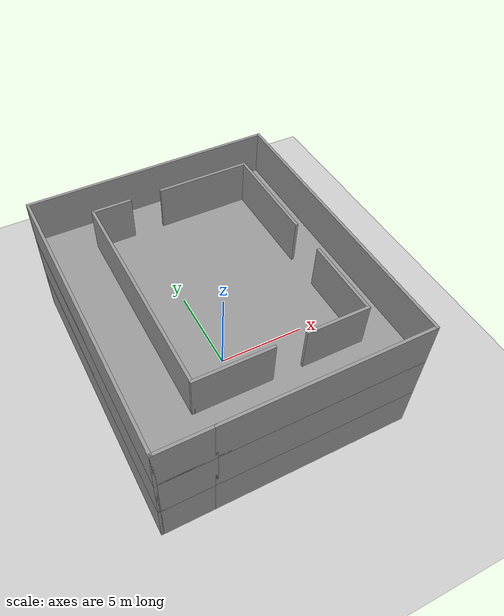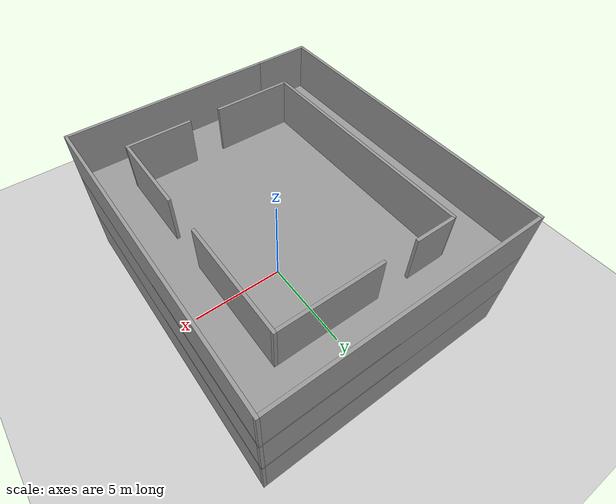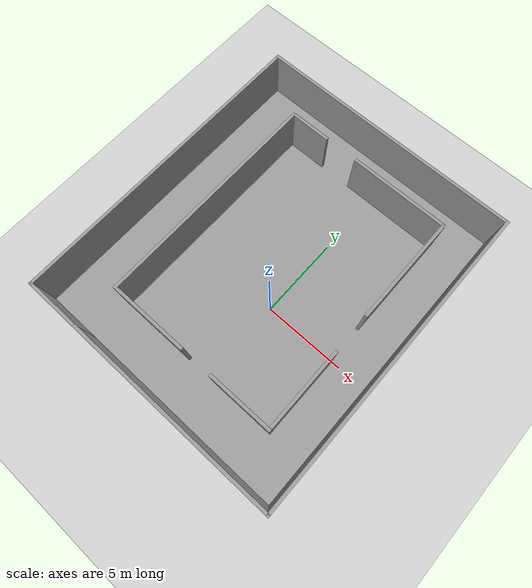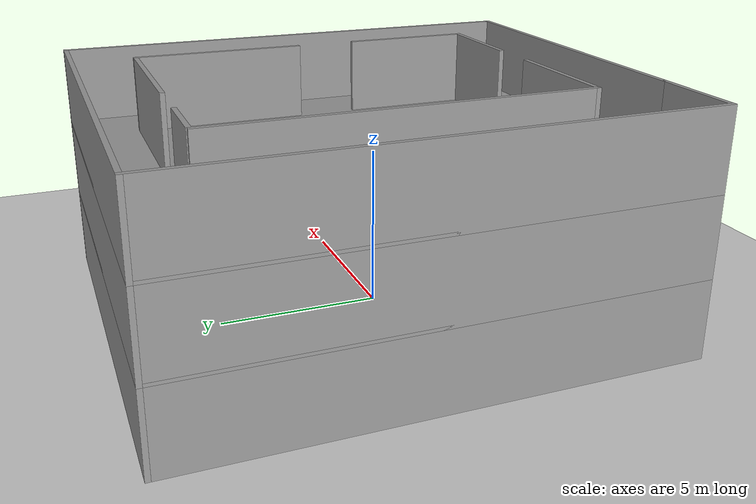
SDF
<sdf version="1.5">
 <world name="default">
  <model name="ground_plane">
   <static>1</static>
   <link name="link">
    <collision name="collision">
     <geometry><plane><normal>0 0 1</normal><size>100 100</size></plane></geometry>
     <surface><friction><ode><mu>100</mu><mu2>50</mu2></ode></friction></surface>
    </collision>
    <visual name="visual">
     <cast_shadows>0</cast_shadows>
     <geometry><plane><normal>0 0 1</normal><size>100 100</size></plane></geometry>
     <material>
      <script><uri>file://media/materials/scripts/gazebo.material</uri><name>Gazebo/Grey</name></script>
     </material>
    </visual>
   </link>
  </model>
  <light name="sun" type="directional">
   <pose>0 0 10 0 -0 0</pose>
   <diffuse>0.8 0.8 0.8 1</diffuse>
   <specular>0.2 0.2 0.2 1</specular>
   <attenuation>
    <range>1000</range>
    <constant>0.9</constant>
    <linear>0.01</linear>
    <quadratic>0.001</quadratic>
   </attenuation>
   <direction>-0.5 0.1 -0.9</direction>
  </light>
  <light name="my_light0" type="directional">
   <pose>0 0 30 0 -0 0</pose>
   <diffuse>0.5 0.5 0.5 1</diffuse>
   <specular>0.1 0.1 0.1 1</specular>
   <direction>0.1 0.1 -0.9</direction>
   <attenuation>
    <range>20</range>
    <linear>0.01</linear>
    <constant>0.5</constant>
    <quadratic>0.001</quadratic>
   </attenuation>
  </light>
  <physics name="default_physics" default="0" type="ode">
   <max_step_size>0.001</max_step_size>
   <real_time_factor>1</real_time_factor>
   <real_time_update_rate>1000</real_time_update_rate>
   <gravity>0 0 -9.8</gravity>
   <magnetic_field>5.5645e-06 2.28758e-05 -4.23884e-05</magnetic_field>
  </physics>
  <scene><ambient>0.4 0.4 0.4 1</ambient><background>0.7 0.7 0.7 1</background><shadows>1</shadows></scene>
  <spherical_coordinates>
   <surface_model>EARTH_WGS84</surface_model>
   <latitude_deg>0</latitude_deg>
   <longitude_deg>0</longitude_deg>
   <elevation>0</elevation>
   <heading_deg>0</heading_deg>
  </spherical_coordinates>
  <model name="Untitled">
   <pose>-0.179226 0.507144 0 0 -0 0</pose>
   <link name="Floor_0">
    <collision name="Floor_0_Collision">
     <geometry><box><size>13.5 15.75 0.1</size></box></geometry>
     <pose>0 0 0.05 0 -0 0</pose>
    </collision>
    <visual name="Floor_0_Visual">
     <pose>0 0 0.05 0 -0 0</pose>
     <geometry><box><size>13.5 15.75 0.1</size></box></geometry>
     <material>
      <script><uri>file://media/materials/scripts/gazebo.material</uri><name>Gazebo/Grey</name></script>
      <ambient>1 1 1 1</ambient>
     </material>
    </visual>
    <pose>-0 0 2.5 0 -0 0</pose>
   </link>
   <link name="Floor_1">
    <collision name="Floor_1_Collision">
     <geometry><box><size>13.5 15.75 0.1</size></box></geometry>
     <pose>0 0 0.05 0 -0 0</pose>
    </collision>
    <visual name="Floor_1_Visual">
     <pose>0 0 0.05 0 -0 0</pose>
     <geometry><box><size>13.5 15.75 0.1</size></box></geometry>
     <material>
      <script><uri>file://media/materials/scripts/gazebo.material</uri><name>Gazebo/Grey</name></script>
      <ambient>1 1 1 1</ambient>
     </material>
    </visual>
    <pose>-0 0 5 0 -0 0</pose>
   </link>
   <link name="Wall_11">
    <collision name="Wall_11_Collision">
     <geometry><box><size>5 0.15 2.5</size></box></geometry>
     <pose>0 0 1.25 0 -0 0</pose>
    </collision>
    <visual name="Wall_11_Visual">
     <pose>0 0 1.25 0 -0 0</pose>
     <geometry><box><size>5 0.15 2.5</size></box></geometry>
     <material>
      <script><uri>file://media/materials/scripts/gazebo.material</uri><name>Gazebo/Grey</name></script>
      <ambient>1 1 1 1</ambient>
     </material>
    </visual>
    <pose>2.25655 5.82928 0 0 -0 3.14159</pose>
   </link>
   <link name="Wall_16">
    <collision name="Wall_16_Collision">
     <geometry><box><size>2 0.15 2.5</size></box></geometry>
     <pose>0 0 1.25 0 -0 0</pose>
    </collision>
    <visual name="Wall_16_Visual">
     <pose>0 0 1.25 0 -0 0</pose>
     <geometry><box><size>2 0.15 2.5</size></box></geometry>
     <material>
      <script><uri>file://media/materials/scripts/gazebo.material</uri><name>Gazebo/Grey</name></script>
      <ambient>1 1 1 1</ambient>
     </material>
    </visual>
    <pose>-2.86941 5.82043 0 0 -0 3.14159</pose>
   </link>
   <link name="Wall_18">
    <collision name="Wall_18_Collision">
     <geometry><box><size>11.5 0.15 2.5</size></box></geometry>
     <pose>0 0 1.25 0 -0 0</pose>
    </collision>
    <visual name="Wall_18_Visual">
     <pose>0 0 1.25 0 -0 0</pose>
     <geometry><box><size>11.5 0.15 2.5</size></box></geometry>
     <material>
      <script><uri>file://media/materials/scripts/gazebo.material</uri><name>Gazebo/Grey</name></script>
      <ambient>1 1 1 1</ambient>
     </material>
    </visual>
    <pose>-3.9084 0.11537 0 0 -0 1.5708</pose>
   </link>
   <link name="Wall_2">
    <collision name="Wall_2_Collision">
     <geometry><box><size>4 0.15 2.5</size></box></geometry>
     <pose>0 0 1.25 0 -0 0</pose>
    </collision>
    <visual name="Wall_2_Visual">
     <pose>0 0 1.25 0 -0 0</pose>
     <geometry><box><size>4 0.15 2.5</size></box></geometry>
     <material>
      <script><uri>file://media/materials/scripts/gazebo.material</uri><name>Gazebo/Grey</name></script>
      <ambient>1 1 1 1</ambient>
     </material>
    </visual>
    <pose>-1.9834 -5.55963 0 0 -0 0</pose>
   </link>
   <link name="Wall_21">
    <collision name="Wall_21_Collision">
     <geometry><box><size>10.75 0.15 2.5</size></box></geometry>
     <pose>0 0 1.25 0 -0 0</pose>
    </collision>
    <visual name="Wall_21_Visual">
     <pose>0 0 1.25 0 -0 0</pose>
     <geometry><box><size>10.75 0.15 2.5</size></box></geometry>
     <material>
      <script><uri>file://media/materials/scripts/gazebo.material</uri><name>Gazebo/Grey</name></script>
      <ambient>1 1 1 1</ambient>
     </material>
    </visual>
    <pose>1.375 -7.8 0 0 -0 0</pose>
   </link>
   <link name="Wall_22">
    <collision name="Wall_22_Collision">
     <geometry><box><size>15.75 0.15 2.5</size></box></geometry>
     <pose>0 0 1.25 0 -0 0</pose>
    </collision>
    <visual name="Wall_22_Visual">
     <pose>0 0 1.25 0 -0 0</pose>
     <geometry><box><size>15.75 0.15 2.5</size></box></geometry>
     <material>
      <script><uri>file://media/materials/scripts/gazebo.material</uri><name>Gazebo/Grey</name></script>
      <ambient>1 1 1 1</ambient>
     </material>
    </visual>
    <pose>6.675 0 0 0 -0 1.5708</pose>
   </link>
   <link name="Wall_23">
    <collision name="Wall_23_Collision">
     <geometry><box><size>13.5 0.15 2.5</size></box></geometry>
     <pose>0 0 1.25 0 -0 0</pose>
    </collision>
    <visual name="Wall_23_Visual">
     <pose>0 0 1.25 0 -0 0</pose>
     <geometry><box><size>13.5 0.15 2.5</size></box></geometry>
     <material>
      <script><uri>file://media/materials/scripts/gazebo.material</uri><name>Gazebo/Grey</name></script>
      <ambient>1 1 1 1</ambient>
     </material>
    </visual>
    <pose>-0 7.8 0 0 -0 3.14159</pose>
   </link>
   <link name="Wall_24">
    <collision name="Wall_24_Collision">
     <geometry><box><size>15.75 0.15 2.5</size></box></geometry>
     <pose>0 0 1.25 0 -0 0</pose>
    </collision>
    <visual name="Wall_24_Visual">
     <pose>0 0 1.25 0 -0 0</pose>
     <geometry><box><size>15.75 0.15 2.5</size></box></geometry>
     <material>
      <script><uri>file://media/materials/scripts/gazebo.material</uri><name>Gazebo/Grey</name></script>
      <ambient>1 1 1 1</ambient>
     </material>
    </visual>
    <pose>-6.675 0 0 0 0 -1.5708</pose>
   </link>
   <link name="Wall_25">
    <collision name="Wall_25_Collision">
     <geometry><box><size>2.9 0.15 2.5</size></box></geometry>
     <pose>0 0 1.25 0 -0 0</pose>
    </collision>
    <visual name="Wall_25_Visual">
     <pose>0 0 1.25 0 -0 0</pose>
     <geometry><box><size>2.9 0.15 2.5</size></box></geometry>
     <material>
      <script><uri>file://media/materials/scripts/gazebo.material</uri><name>Gazebo/Grey</name></script>
      <ambient>1 1 1 1</ambient>
     </material>
    </visual>
    <pose>-5.3 -7.8 0 0 -0 0</pose>
   </link>
   <link name="Wall_27">
    <collision name="Wall_27_Collision">
     <geometry><box><size>4 0.15 2.5</size></box></geometry>
     <pose>0 0 1.25 0 -0 0</pose>
    </collision>
    <visual name="Wall_27_Visual">
     <pose>0 0 1.25 0 -0 0</pose>
     <geometry><box><size>4 0.15 2.5</size></box></geometry>
     <material>
      <script><uri>file://media/materials/scripts/gazebo.material</uri><name>Gazebo/Grey</name></script>
      <ambient>1 1 1 1</ambient>
     </material>
    </visual>
    <pose>-1.9834 -5.55963 2.5 0 -0 0</pose>
   </link>
   <link name="Wall_28">
    <collision name="Wall_28_Collision">
     <geometry><box><size>3.25 0.15 2.5</size></box></geometry>
     <pose>0 0 1.25 0 -0 0</pose>
    </collision>
    <visual name="Wall_28_Visual">
     <pose>0 0 1.25 0 -0 0</pose>
     <geometry><box><size>3.25 0.15 2.5</size></box></geometry>
     <material>
      <script><uri>file://media/materials/scripts/gazebo.material</uri><name>Gazebo/Grey</name></script>
      <ambient>1 1 1 1</ambient>
     </material>
    </visual>
    <pose>3.15493 -5.55217 2.5 0 -0 3.14159</pose>
   </link>
   <link name="Wall_29">
    <collision name="Wall_29_Collision">
     <geometry><box><size>4 0.15 2.5</size></box></geometry>
     <pose>0 0 1.25 0 -0 0</pose>
    </collision>
    <visual name="Wall_29_Visual">
     <pose>0 0 1.25 0 -0 0</pose>
     <geometry><box><size>4 0.15 2.5</size></box></geometry>
     <material>
      <script><uri>file://media/materials/scripts/gazebo.material</uri><name>Gazebo/Grey</name></script>
      <ambient>1 1 1 1</ambient>
     </material>
    </visual>
    <pose>4.70512 -3.47552 2.5 0 -0 1.5708</pose>
   </link>
   <link name="Wall_30">
    <collision name="Wall_30_Collision">
     <geometry><box><size>5.5 0.15 2.5</size></box></geometry>
     <pose>0 0 1.25 0 -0 0</pose>
    </collision>
    <visual name="Wall_30_Visual">
     <pose>0 0 1.25 0 -0 0</pose>
     <geometry><box><size>5.5 0.15 2.5</size></box></geometry>
     <material>
      <script><uri>file://media/materials/scripts/gazebo.material</uri><name>Gazebo/Grey</name></script>
      <ambient>1 1 1 1</ambient>
     </material>
    </visual>
    <pose>4.68155 3.15428 2.5 0 -0 1.5708</pose>
   </link>
   <link name="Wall_31">
    <collision name="Wall_31_Collision">
     <geometry><box><size>5 0.15 2.5</size></box></geometry>
     <pose>0 0 1.25 0 -0 0</pose>
    </collision>
    <visual name="Wall_31_Visual">
     <pose>0 0 1.25 0 -0 0</pose>
     <geometry><box><size>5 0.15 2.5</size></box></geometry>
     <material>
      <script><uri>file://media/materials/scripts/gazebo.material</uri><name>Gazebo/Grey</name></script>
      <ambient>1 1 1 1</ambient>
     </material>
    </visual>
    <pose>2.25655 5.82928 2.5 0 -0 3.14159</pose>
   </link>
   <link name="Wall_32">
    <collision name="Wall_32_Collision">
     <geometry><box><size>2 0.15 2.5</size></box></geometry>
     <pose>0 0 1.25 0 -0 0</pose>
    </collision>
    <visual name="Wall_32_Visual">
     <pose>0 0 1.25 0 -0 0</pose>
     <geometry><box><size>2 0.15 2.5</size></box></geometry>
     <material>
      <script><uri>file://media/materials/scripts/gazebo.material</uri><name>Gazebo/Grey</name></script>
      <ambient>1 1 1 1</ambient>
     </material>
    </visual>
    <pose>-2.86941 5.82043 2.5 0 -0 3.14159</pose>
   </link>
   <link name="Wall_33">
    <collision name="Wall_33_Collision">
     <geometry><box><size>11.5 0.15 2.5</size></box></geometry>
     <pose>0 0 1.25 0 -0 0</pose>
    </collision>
    <visual name="Wall_33_Visual">
     <pose>0 0 1.25 0 -0 0</pose>
     <geometry><box><size>11.5 0.15 2.5</size></box></geometry>
     <material>
      <script><uri>file://media/materials/scripts/gazebo.material</uri><name>Gazebo/Grey</name></script>
      <ambient>1 1 1 1</ambient>
     </material>
    </visual>
    <pose>-3.9084 0.11537 2.5 0 -0 1.5708</pose>
   </link>
   <link name="Wall_34">
    <collision name="Wall_34_Collision">
     <geometry><box><size>10.75 0.15 2.5</size></box></geometry>
     <pose>0 0 1.25 0 -0 0</pose>
    </collision>
    <visual name="Wall_34_Visual">
     <pose>0 0 1.25 0 -0 0</pose>
     <geometry><box><size>10.75 0.15 2.5</size></box></geometry>
     <material>
      <script><uri>file://media/materials/scripts/gazebo.material</uri><name>Gazebo/Grey</name></script>
      <ambient>1 1 1 1</ambient>
     </material>
    </visual>
    <pose>1.375 -7.8 2.5 0 -0 0</pose>
   </link>
   <link name="Wall_35">
    <collision name="Wall_35_Collision">
     <geometry><box><size>15.75 0.15 2.5</size></box></geometry>
     <pose>0 0 1.25 0 -0 0</pose>
    </collision>
    <visual name="Wall_35_Visual">
     <pose>0 0 1.25 0 -0 0</pose>
     <geometry><box><size>15.75 0.15 2.5</size></box></geometry>
     <material>
      <script><uri>file://media/materials/scripts/gazebo.material</uri><name>Gazebo/Grey</name></script>
      <ambient>1 1 1 1</ambient>
     </material>
    </visual>
    <pose>6.675 0 2.5 0 -0 1.5708</pose>
   </link>
   <link name="Wall_36">
    <collision name="Wall_36_Collision">
     <geometry><box><size>13.5 0.15 2.5</size></box></geometry>
     <pose>0 0 1.25 0 -0 0</pose>
    </collision>
    <visual name="Wall_36_Visual">
     <pose>0 0 1.25 0 -0 0</pose>
     <geometry><box><size>13.5 0.15 2.5</size></box></geometry>
     <material>
      <script><uri>file://media/materials/scripts/gazebo.material</uri><name>Gazebo/Grey</name></script>
      <ambient>1 1 1 1</ambient>
     </material>
    </visual>
    <pose>-0 7.8 2.5 0 -0 3.14159</pose>
   </link>
   <link name="Wall_37">
    <collision name="Wall_37_Collision">
     <geometry><box><size>15.75 0.15 2.5</size></box></geometry>
     <pose>0 0 1.25 0 -0 0</pose>
    </collision>
    <visual name="Wall_37_Visual">
     <pose>0 0 1.25 0 -0 0</pose>
     <geometry><box><size>15.75 0.15 2.5</size></box></geometry>
     <material>
      <script><uri>file://media/materials/scripts/gazebo.material</uri><name>Gazebo/Grey</name></script>
      <ambient>1 1 1 1</ambient>
     </material>
    </visual>
    <pose>-6.675 0 2.5 0 0 -1.5708</pose>
   </link>
   <link name="Wall_38">
    <collision name="Wall_38_Collision">
     <geometry><box><size>2.9 0.15 2.5</size></box></geometry>
     <pose>0 0 1.25 0 -0 0</pose>
    </collision>
    <visual name="Wall_38_Visual">
     <pose>0 0 1.25 0 -0 0</pose>
     <geometry><box><size>2.9 0.15 2.5</size></box></geometry>
     <material>
      <script><uri>file://media/materials/scripts/gazebo.material</uri><name>Gazebo/Grey</name></script>
      <ambient>1 1 1 1</ambient>
     </material>
    </visual>
    <pose>-5.3 -7.8 2.5 0 -0 0</pose>
   </link>
   <link name="Wall_39">
    <collision name="Wall_39_Collision">
     <geometry><box><size>4 0.15 2.5</size></box></geometry>
     <pose>0 0 1.25 0 -0 0</pose>
    </collision>
    <visual name="Wall_39_Visual">
     <pose>0 0 1.25 0 -0 0</pose>
     <geometry><box><size>4 0.15 2.5</size></box></geometry>
     <material>
      <script><uri>file://media/materials/scripts/gazebo.material</uri><name>Gazebo/Grey</name></script>
      <ambient>1 1 1 1</ambient>
     </material>
    </visual>
    <pose>-1.9834 -5.55963 5 0 -0 0</pose>
   </link>
   <link name="Wall_4">
    <collision name="Wall_4_Collision">
     <geometry><box><size>3.25 0.15 2.5</size></box></geometry>
     <pose>0 0 1.25 0 -0 0</pose>
    </collision>
    <visual name="Wall_4_Visual">
     <pose>0 0 1.25 0 -0 0</pose>
     <geometry><box><size>3.25 0.15 2.5</size></box></geometry>
     <material>
      <script><uri>file://media/materials/scripts/gazebo.material</uri><name>Gazebo/Grey</name></script>
      <ambient>1 1 1 1</ambient>
     </material>
    </visual>
    <pose>3.15493 -5.55217 0 0 -0 3.14159</pose>
   </link>
   <link name="Wall_40">
    <collision name="Wall_40_Collision">
     <geometry><box><size>3.25 0.15 2.5</size></box></geometry>
     <pose>0 0 1.25 0 -0 0</pose>
    </collision>
    <visual name="Wall_40_Visual">
     <pose>0 0 1.25 0 -0 0</pose>
     <geometry><box><size>3.25 0.15 2.5</size></box></geometry>
     <material>
      <script><uri>file://media/materials/scripts/gazebo.material</uri><name>Gazebo/Grey</name></script>
      <ambient>1 1 1 1</ambient>
     </material>
    </visual>
    <pose>3.15493 -5.55217 5 0 -0 3.14159</pose>
   </link>
   <link name="Wall_41">
    <collision name="Wall_41_Collision">
     <geometry><box><size>4 0.15 2.5</size></box></geometry>
     <pose>0 0 1.25 0 -0 0</pose>
    </collision>
    <visual name="Wall_41_Visual">
     <pose>0 0 1.25 0 -0 0</pose>
     <geometry><box><size>4 0.15 2.5</size></box></geometry>
     <material>
      <script><uri>file://media/materials/scripts/gazebo.material</uri><name>Gazebo/Grey</name></script>
      <ambient>1 1 1 1</ambient>
     </material>
    </visual>
    <pose>4.70512 -3.47552 5 0 -0 1.5708</pose>
   </link>
   <link name="Wall_42">
    <collision name="Wall_42_Collision">
     <geometry><box><size>5.5 0.15 2.5</size></box></geometry>
     <pose>0 0 1.25 0 -0 0</pose>
    </collision>
    <visual name="Wall_42_Visual">
     <pose>0 0 1.25 0 -0 0</pose>
     <geometry><box><size>5.5 0.15 2.5</size></box></geometry>
     <material>
      <script><uri>file://media/materials/scripts/gazebo.material</uri><name>Gazebo/Grey</name></script>
      <ambient>1 1 1 1</ambient>
     </material>
    </visual>
    <pose>4.68155 3.15428 5 0 -0 1.5708</pose>
   </link>
   <link name="Wall_43">
    <collision name="Wall_43_Collision">
     <geometry><box><size>5 0.15 2.5</size></box></geometry>
     <pose>0 0 1.25 0 -0 0</pose>
    </collision>
    <visual name="Wall_43_Visual">
     <pose>0 0 1.25 0 -0 0</pose>
     <geometry><box><size>5 0.15 2.5</size></box></geometry>
     <material>
      <script><uri>file://media/materials/scripts/gazebo.material</uri><name>Gazebo/Grey</name></script>
      <ambient>1 1 1 1</ambient>
     </material>
    </visual>
    <pose>2.25655 5.82928 5 0 -0 3.14159</pose>
   </link>
   <link name="Wall_44">
    <collision name="Wall_44_Collision">
     <geometry><box><size>2 0.15 2.5</size></box></geometry>
     <pose>0 0 1.25 0 -0 0</pose>
    </collision>
    <visual name="Wall_44_Visual">
     <pose>0 0 1.25 0 -0 0</pose>
     <geometry><box><size>2 0.15 2.5</size></box></geometry>
     <material>
      <script><uri>file://media/materials/scripts/gazebo.material</uri><name>Gazebo/Grey</name></script>
      <ambient>1 1 1 1</ambient>
     </material>
    </visual>
    <pose>-2.86941 5.82043 5 0 -0 3.14159</pose>
   </link>
   <link name="Wall_45">
    <collision name="Wall_45_Collision">
     <geometry><box><size>11.5 0.15 2.5</size></box></geometry>
     <pose>0 0 1.25 0 -0 0</pose>
    </collision>
    <visual name="Wall_45_Visual">
     <pose>0 0 1.25 0 -0 0</pose>
     <geometry><box><size>11.5 0.15 2.5</size></box></geometry>
     <material>
      <script><uri>file://media/materials/scripts/gazebo.material</uri><name>Gazebo/Grey</name></script>
      <ambient>1 1 1 1</ambient>
     </material>
    </visual>
    <pose>-3.9084 0.11537 5 0 -0 1.5708</pose>
   </link>
   <link name="Wall_46">
    <collision name="Wall_46_Collision">
     <geometry><box><size>10.75 0.15 2.5</size></box></geometry>
     <pose>0 0 1.25 0 -0 0</pose>
    </collision>
    <visual name="Wall_46_Visual">
     <pose>0 0 1.25 0 -0 0</pose>
     <geometry><box><size>10.75 0.15 2.5</size></box></geometry>
     <material>
      <script><uri>file://media/materials/scripts/gazebo.material</uri><name>Gazebo/Grey</name></script>
      <ambient>1 1 1 1</ambient>
     </material>
    </visual>
    <pose>1.375 -7.8 5 0 -0 0</pose>
   </link>
   <link name="Wall_47">
    <collision name="Wall_47_Collision">
     <geometry><box><size>15.75 0.15 2.5</size></box></geometry>
     <pose>0 0 1.25 0 -0 0</pose>
    </collision>
    <visual name="Wall_47_Visual">
     <pose>0 0 1.25 0 -0 0</pose>
     <geometry><box><size>15.75 0.15 2.5</size></box></geometry>
     <material>
      <script><uri>file://media/materials/scripts/gazebo.material</uri><name>Gazebo/Grey</name></script>
      <ambient>1 1 1 1</ambient>
     </material>
    </visual>
    <pose>6.675 0 5 0 -0 1.5708</pose>
   </link>
   <link name="Wall_48">
    <collision name="Wall_48_Collision">
     <geometry><box><size>13.5 0.15 2.5</size></box></geometry>
     <pose>0 0 1.25 0 -0 0</pose>
    </collision>
    <visual name="Wall_48_Visual">
     <pose>0 0 1.25 0 -0 0</pose>
     <geometry><box><size>13.5 0.15 2.5</size></box></geometry>
     <material>
      <script><uri>file://media/materials/scripts/gazebo.material</uri><name>Gazebo/Grey</name></script>
      <ambient>1 1 1 1</ambient>
     </material>
    </visual>
    <pose>-0 7.8 5 0 -0 3.14159</pose>
   </link>
   <link name="Wall_49">
    <collision name="Wall_49_Collision">
     <geometry><box><size>15.75 0.15 2.5</size></box></geometry>
     <pose>0 0 1.25 0 -0 0</pose>
    </collision>
    <visual name="Wall_49_Visual">
     <pose>0 0 1.25 0 -0 0</pose>
     <geometry><box><size>15.75 0.15 2.5</size></box></geometry>
     <material>
      <script><uri>file://media/materials/scripts/gazebo.material</uri><name>Gazebo/Grey</name></script>
      <ambient>1 1 1 1</ambient>
     </material>
    </visual>
    <pose>-6.675 0 5 0 0 -1.5708</pose>
   </link>
   <link name="Wall_50">
    <collision name="Wall_50_Collision">
     <geometry><box><size>2.9 0.15 2.5</size></box></geometry>
     <pose>0 0 1.25 0 -0 0</pose>
    </collision>
    <visual name="Wall_50_Visual">
     <pose>0 0 1.25 0 -0 0</pose>
     <geometry><box><size>2.9 0.15 2.5</size></box></geometry>
     <material>
      <script><uri>file://media/materials/scripts/gazebo.material</uri><name>Gazebo/Grey</name></script>
      <ambient>1 1 1 1</ambient>
     </material>
    </visual>
    <pose>-5.3 -7.8 5 0 -0 0</pose>
   </link>
   <link name="Wall_6">
    <collision name="Wall_6_Collision">
     <geometry><box><size>4 0.15 2.5</size></box></geometry>
     <pose>0 0 1.25 0 -0 0</pose>
    </collision>
    <visual name="Wall_6_Visual">
     <pose>0 0 1.25 0 -0 0</pose>
     <geometry><box><size>4 0.15 2.5</size></box></geometry>
     <material>
      <script><uri>file://media/materials/scripts/gazebo.material</uri><name>Gazebo/Grey</name></script>
      <ambient>1 1 1 1</ambient>
     </material>
    </visual>
    <pose>4.70512 -3.47552 0 0 -0 1.5708</pose>
   </link>
   <link name="Wall_9">
    <collision name="Wall_9_Collision">
     <geometry><box><size>5.5 0.15 2.5</size></box></geometry>
     <pose>0 0 1.25 0 -0 0</pose>
    </collision>
    <visual name="Wall_9_Visual">
     <pose>0 0 1.25 0 -0 0</pose>
     <geometry><box><size>5.5 0.15 2.5</size></box></geometry>
     <material>
      <script><uri>file://media/materials/scripts/gazebo.material</uri><name>Gazebo/Grey</name></script>
      <ambient>1 1 1 1</ambient>
     </material>
    </visual>
    <pose>4.68155 3.15428 0 0 -0 1.5708</pose>
   </link>
   <static>1</static>
  </model>
 </world>
</sdf>
